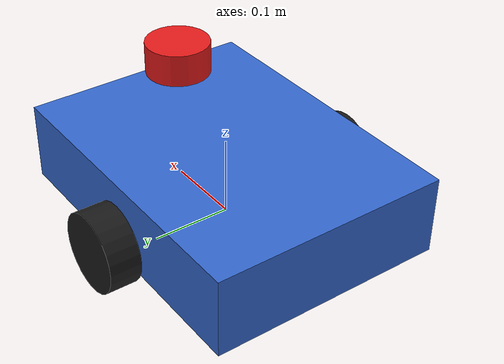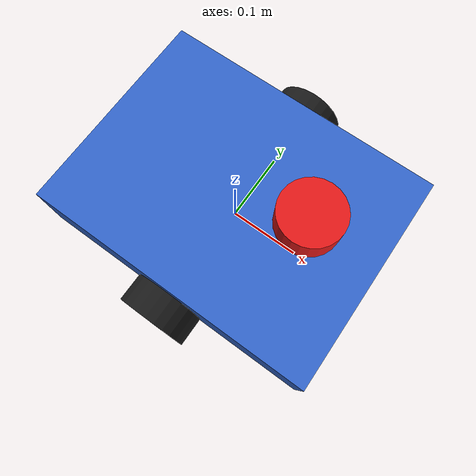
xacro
<?xml version="1.0"?>
<robot name="courier" xmlns:xacro="http://www.ros.org/wiki/xacro">

  <!-- BASE LINKS -->
  <link name="base_footprint"/>

  <joint name="base_joint" type="fixed">
    <parent link="base_footprint"/>
    <child  link="base_link"/>
    <origin xyz="0 0 0.05" rpy="0 0 0"/>
  </joint>

  <link name="base_link">
    <visual>
      <geometry><box size="0.4 0.3 0.1"/></geometry>
      <material name="blue"><color rgba="0.2 0.4 0.8 1.0"/></material>
    </visual>
    <collision>
      <geometry><box size="0.4 0.3 0.1"/></geometry>
    </collision>
    <inertial>
      <mass value="5.0"/>
      <inertia ixx="0.08" ixy="0.0" ixz="0.0"
                          iyy="0.10" iyz="0.0"
                                     izz="0.12"/>
    </inertial>
  </link>

  <!-- LEFT WHEEL -->
  <joint name="left_wheel_joint" type="continuous">
    <parent link="base_link"/>
    <child  link="left_wheel"/>
    <origin xyz="0 0.17 -0.03" rpy="-1.5708 0 0"/>
    <axis xyz="0 0 1"/>
  </joint>

  <link name="left_wheel">
    <visual>
      <geometry><cylinder radius="0.05" length="0.04"/></geometry>
      <material name="black"><color rgba="0.1 0.1 0.1 1.0"/></material>
    </visual>
    <collision>
      <geometry><cylinder radius="0.05" length="0.04"/></geometry>
    </collision>
    <inertial>
      <mass value="0.5"/>
      <inertia ixx="0.001" ixy="0.0" ixz="0.0"
                           iyy="0.001" iyz="0.0"
                                       izz="0.001"/>
    </inertial>
  </link>

  <!-- RIGHT WHEEL -->
  <joint name="right_wheel_joint" type="continuous">
    <parent link="base_link"/>
    <child  link="right_wheel"/>
    <origin xyz="0 -0.17 -0.03" rpy="-1.5708 0 0"/>
    <axis xyz="0 0 1"/>
  </joint>

  <link name="right_wheel">
    <visual>
      <geometry><cylinder radius="0.05" length="0.04"/></geometry>
      <material name="black"><color rgba="0.1 0.1 0.1 1.0"/></material>
    </visual>
    <collision>
      <geometry><cylinder radius="0.05" length="0.04"/></geometry>
    </collision>
    <inertial>
      <mass value="0.5"/>
      <inertia ixx="0.001" ixy="0.0" ixz="0.0"
                           iyy="0.001" iyz="0.0"
                                       izz="0.001"/>
    </inertial>
  </link>

  <!-- CASTER WHEEL -->
  <joint name="caster_joint" type="fixed">
    <parent link="base_link"/>
    <child  link="caster"/>
    <origin xyz="0.15 0 -0.05" rpy="0 0 0"/>
  </joint>

  <link name="caster">
    <visual>
      <geometry><sphere radius="0.03"/></geometry>
      <material name="grey"><color rgba="0.5 0.5 0.5 1.0"/></material>
    </visual>
    <collision>
      <geometry><sphere radius="0.03"/></geometry>
    </collision>
    <inertial>
      <mass value="0.1"/>
      <inertia ixx="0.0001" ixy="0.0" ixz="0.0"
                            iyy="0.0001" iyz="0.0"
                                         izz="0.0001"/>
    </inertial>
  </link>

  <!-- LIDAR -->
  <joint name="lidar_joint" type="fixed">
    <parent link="base_link"/>
    <child  link="lidar_link"/>
    <origin xyz="0.1 0 0.12" rpy="0 0 0"/>
  </joint>

  <link name="lidar_link">
    <visual>
      <geometry><cylinder radius="0.04" length="0.04"/></geometry>
      <material name="red"><color rgba="0.9 0.1 0.1 1.0"/></material>
    </visual>
    <collision>
      <geometry><cylinder radius="0.04" length="0.04"/></geometry>
    </collision>
    <inertial>
      <mass value="0.1"/>
      <inertia ixx="0.0001" ixy="0.0" ixz="0.0"
                            iyy="0.0001" iyz="0.0"
                                         izz="0.0001"/>
    </inertial>
  </link>

  <!-- GAZEBO — Differential Drive Plugin -->
  <gazebo>
    <plugin name="diff_drive" filename="libgazebo_ros_diff_drive.so">
      <left_joint>left_wheel_joint</left_joint>
      <right_joint>right_wheel_joint</right_joint>
      <wheel_separation>0.34</wheel_separation>
      <wheel_diameter>0.10</wheel_diameter>
      <max_wheel_torque>5</max_wheel_torque>
      <max_wheel_acceleration>0.3</max_wheel_acceleration>
      <command_topic>cmd_vel</command_topic>
      <publish_odom>true</publish_odom>
      <publish_odom_tf>true</publish_odom_tf>
      <publish_wheel_tf>true</publish_wheel_tf>
      <odometry_topic>odom</odometry_topic>
      <odometry_frame>odom</odometry_frame>
      <robot_base_frame>base_footprint</robot_base_frame>
    </plugin>
  </gazebo>

  <!-- caster has no friction -->
  <gazebo reference="caster">
    <mu1>0.0</mu1>
    <mu2>0.0</mu2>
  </gazebo>

  <!-- main wheels: high friction (grip) + damping (reduces bounce/wobble) -->
  <gazebo reference="left_wheel">
    <mu1>1.0</mu1>
    <mu2>1.0</mu2>
    <kp>1000000.0</kp>
    <kd>100.0</kd>
    <minDepth>0.001</minDepth>
  </gazebo>

  <gazebo reference="right_wheel">
    <mu1>1.0</mu1>
    <mu2>1.0</mu2>
    <kp>1000000.0</kp>
    <kd>100.0</kd>
    <minDepth>0.001</minDepth>
  </gazebo>

  <!-- GAZEBO — LiDAR Plugin -->
  <gazebo reference="lidar_link">
    <sensor name="lidar" type="ray">
      <always_on>true</always_on>
      <visualize>true</visualize>
      <update_rate>10</update_rate>
      <ray>
        <scan>
          <horizontal>
            <samples>360</samples>
            <resolution>1</resolution>
            <min_angle>-3.14159</min_angle>
            <max_angle>3.14159</max_angle>
          </horizontal>
        </scan>
        <range>
          <min>0.12</min>
          <max>10.0</max>
          <resolution>0.01</resolution>
        </range>
        <noise>
          <type>gaussian</type>
          <mean>0.0</mean>
          <stddev>0.01</stddev>
        </noise>
      </ray>
      <plugin name="scan" filename="libgazebo_ros_ray_sensor.so">
        <ros>
          <remapping>~/out:=scan</remapping>
        </ros>
        <output_type>sensor_msgs/LaserScan</output_type>
        <frame_name>lidar_link</frame_name>
      </plugin>
    </sensor>
  </gazebo>

</robot>
